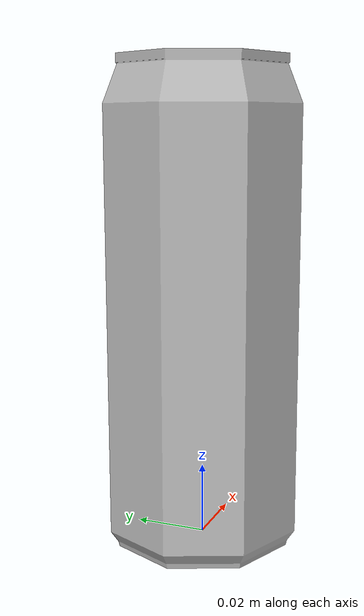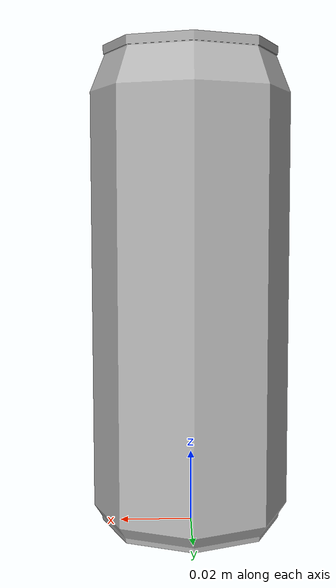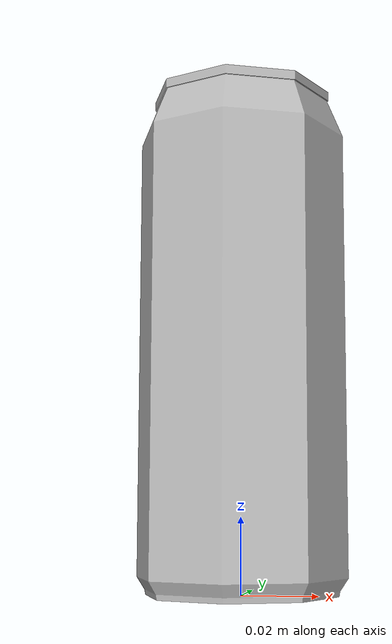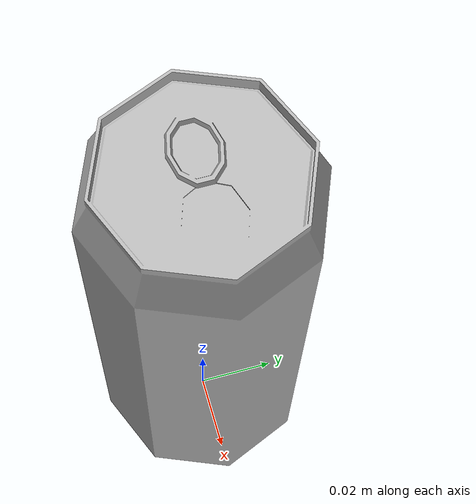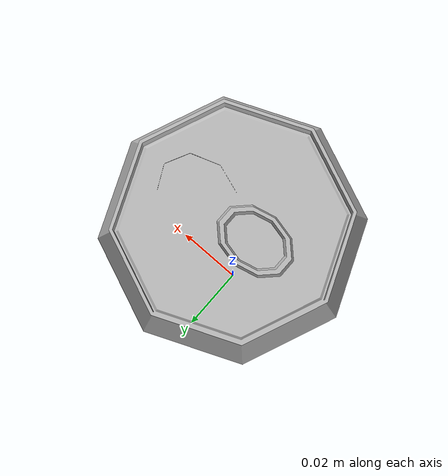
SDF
<?xml version="1.0"?>

<sdf version="1.6">
  <model name='Coke'>
    <static>false</static>
    <link name="body">
      <pose>0 0 0 0 0 0</pose>

        <!-- Mesh visual; scale uniforms < 1 shrink toward ~real can size vs raw OBJ. -->
        <visual name="visual">
          <geometry>
            <mesh>
              <uri>model://Coke/meshes/coke.obj</uri>
              <scale>0.92 0.92 0.92</scale>
            </mesh>
          </geometry>
        </visual>

        <!-- Cylinder: h=0.14 m (ex-box); Ø=0.05 m → r=0.025 m. Axis +Z; bottom at link z=0. -->
        <collision name="collision">
          <pose>0 0 0.07 0 0 0</pose>
          <geometry>
            <cylinder>
              <radius>0.025</radius>
              <length>0.14</length>
            </cylinder>
          </geometry>
          <surface>
            <friction>
              <ode>
                <mu>7</mu>
                <mu2>7</mu2>
              </ode>
            </friction>
          </surface>
        </collision>

        <!-- Inertia: solid cylinder m=0.345, r=0.025, h=0.14 (Z up). -->
        <inertial>
          <pose>0 0 0.07 0 0 0</pose>
          <mass>0.345</mass>
          <inertia>
            <ixx>0.000617</ixx>
            <ixy>0</ixy>
            <ixz>0</ixz>
            <iyy>0.000617</iyy>
            <iyz>0</iyz>
            <izz>0.000108</izz>
          </inertia>
        </inertial>
    </link>
  </model>
</sdf>
